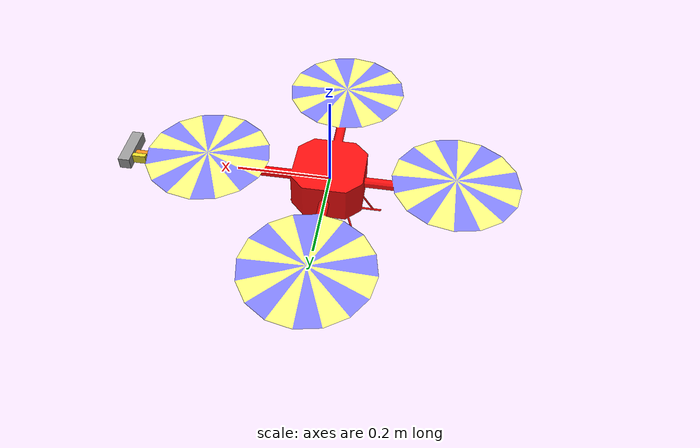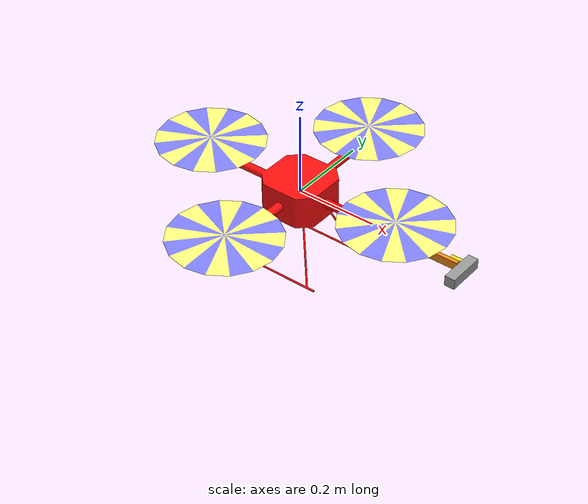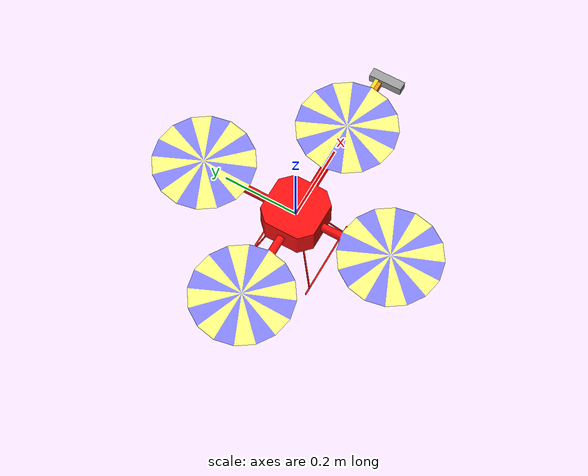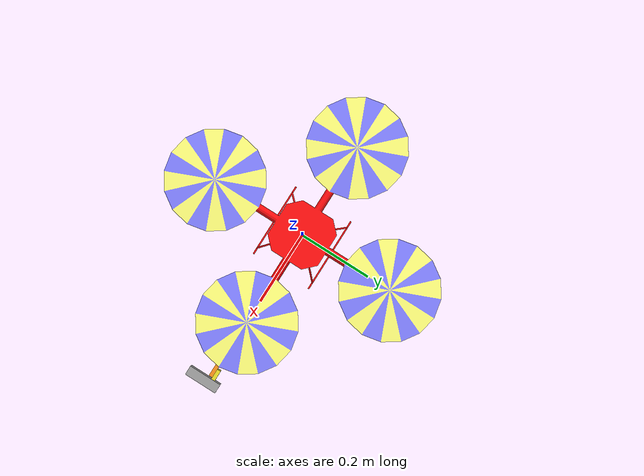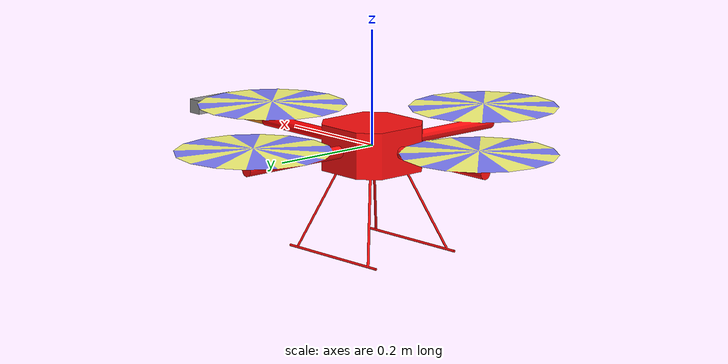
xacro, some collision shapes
<?xml version="1.0"?>

<robot name="quadrotor" xmlns:xacro="http://www.ros.org/wiki/xacro">
    <!--quadrotor_base-->
    <xacro:include filename="$(find hector_quadrotor_description)/urdf/quadrotor_base.urdf.xacro" />
    <xacro:quadrotor_base_macro />

    <!--link to camera-->
    <joint name="base_fixed_joint" type="fixed">
      <origin xyz="0.28 0 0" rpy="0 0 0"/>
      <parent link="base_link"/>
      <child link="base_fixed_link"/>
    </joint>
    <link name="base_fixed_link">
      <inertial>
        <mass value="0.001" />
        <origin xyz="0 0 0" rpy="0 0 0" />
        <inertia ixx="1.0e-6" ixy="0.0" ixz="0.0" iyy="1.0e-6" iyz="0.0" izz="1.0e-6" />
      </inertial>
      <visual>
        <origin xyz="0.075 -0.005 0" rpy="0 0 0" />
        <geometry>
          <box size="0.15 0.01 0.02" />
        </geometry>
      </visual>
      <collision>
        <origin xyz="0.075 -0.005 0" rpy="0 0 0" />
        <geometry>
          <box size="0.15 0.01 0.02" />
        </geometry>
      </collision>
    </link>
    <joint name="camera_joint" type="revolute">
      <origin xyz="0.14 0 0" rpy="0 0 0"/>
      <limit upper="1.5708" lower="-1.5708" velocity="10.0" effort="0.001"/>
      <axis xyz="0 1 0" />
      <parent link="base_fixed_link"/>
      <child link="camera_link"/>
    </joint>
    <link name="camera_link">
      <inertial>
        <mass value="0.001" />
        <origin xyz="0 0 0" rpy="0 0 0" />
        <inertia ixx="1.0e-6" ixy="0.0" ixz="0.0" iyy="1.0e-6" iyz="0.0" izz="1.0e-6" />
      </inertial>
      <visual>
        <origin xyz="0 0.005 0" rpy="0 0 0" />
        <geometry>
          <box size="0.03 0.01 0.02" />
        </geometry>
      </visual>
      <collision>
        <origin xyz="0 0.005 0" rpy="0 0 0" />
        <geometry>
          <box size="0.03 0.01 0.02" />
        </geometry>
      </collision>
    </link>

    <!-- add two links and joints for controlling the depth camera rs435 -->
    <xacro:include filename="$(find aircraft_scanning_description)/urdf/rgbd_camera.urdf.xacro"/>
    <xacro:camera_macro parent="camera_link">
      <origin xyz="0.035 0 0" rpy="0 0 0"/>
    </xacro:camera_macro>

    <gazebo reference="base_fixed_link">
      <material>Gazebo/Orange</material>
    </gazebo>
    <gazebo reference="camera_link">
      <material>Gazebo/Yellow</material>
    </gazebo>
    <!--transmission for joint-->
    <transmission name="camera_tran">
      <type>transmission_interface/SimpleTransmission</type>
      <joint name="camera_joint">
        <hardwareInterface>EffortJointInterface</hardwareInterface>
      </joint>
      <actuator name="camera_motor">
        <hardwareInterface>EffortJointInterface</hardwareInterface>
        <mechanicalReduction>1</mechanicalReduction>
      </actuator>
    </transmission>
    <gazebo>
      <plugin name="gazebo_ros_control" filename="libgazebo_ros_control.so">
        <robotNamespace>/uav_scanning</robotNamespace>
        <robotSimType>gazebo_ros_control/DefaultRobotHWSim</robotSimType>
        <legacyModeNS>true</legacyModeNS>
      </plugin>
    </gazebo>

    <xacro:include filename="$(find hector_quadrotor_gazebo)/urdf/quadrotor_plugins.gazebo.xacro" />

</robot>

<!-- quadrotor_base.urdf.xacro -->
<robot xmlns:xacro="http://www.ros.org/wiki/xacro">

  <xacro:property name="pi" value="3.1415926535897931" />

  <!-- Main quadrotor link -->
  <xacro:macro name="quadrotor_base_macro">
    <link name="base_link">
      <inertial>
        <mass value="1.477" />
        <origin xyz="0 0 0" />
        <inertia ixx="0.01152" ixy="0.0" ixz="0.0" iyy="0.01152" iyz="0.0" izz="0.0218" />
      </inertial>

      <visual>
        <origin xyz="0 0 0" rpy="0 0 0" />
        <geometry>
          <mesh filename="package://hector_quadrotor_description/meshes/quadrotor/quadrotor_base.dae"/>
        </geometry>
      </visual>

      <collision>
        <origin xyz="0 0 0" rpy="0 0 0" />
        <geometry>
          <mesh filename="package://hector_quadrotor_description/meshes/quadrotor/quadrotor_base.stl"/>
        </geometry>
      </collision>
    </link>

    <!-- Sonar height sensor -->

  </xacro:macro>
</robot>

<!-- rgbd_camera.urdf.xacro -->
<robot xmlns:xacro="http://www.ros.org/wiki/xacro">
  <xacro:property name="M_PI" value="3.1415926535897931" />
  <!-- Intel_RealSense_D400 info-->
  <xacro:property name="realsense_d435_width" value="0.09"/>
  <xacro:property name="realsense_d435_height" value="0.025"/>
  <xacro:property name="realsense_d435_depth" value="0.025"/>
  <!-- Intel_RealSense_D400_Family_Datasheet_Jan2019.pdf, page 64 -->
  <xacro:property name="realsense_d435_front_to_depth" value="0.0042" />
   <!-- Measured from CAD file -->
  <xacro:property name="realsense_d435_mount_hole_to_front" value="0.0149" />
  <xacro:property name="realsense_d435_case_offset_x" value="${realsense_d435_front_to_depth - realsense_d435_depth/2.0}"/>
  <!-- mounting hole to depth frame, Intel_RealSense_D400_Family_Datasheet_Jan2019.pdf, page 66 -->
  <xacro:property name="realsense_d435_case_offset_y" value="-0.0175"/>
  <xacro:property name="realsense_d435_case_offset_z" value="0.0"/>
  <xacro:property name="rpy" value="0 0 0"/>

  <xacro:macro name="camera_macro" params="parent *origin">
    <joint name="rs435_joint" type="fixed">
      <xacro:insert_block name="origin"/>
      <parent link="${parent}"/>
      <child link="rs435_link"/>
    </joint>
    <link name="rs435_link">
      <inertial>
        <mass value="0.001" />
        <origin xyz="0 0 0" rpy="0 0 0" />
        <inertia ixx="1.0e-6" ixy="0" ixz="0" iyy="1.0e-6" iyz="0" izz="1.0e-6" />
      </inertial>
	    <visual>
        <origin xyz="${realsense_d435_front_to_depth} ${realsense_d435_case_offset_y} 0.0" rpy="${M_PI/2} 0 ${M_PI/2}" />
          <geometry>
            <mesh filename="package://hector_sensors_description/meshes/intel_realsense_d435/D435.dae" scale="0.001 0.001 0.001" />
          </geometry>
      </visual>
      <collision>
        <origin xyz="${realsense_d435_case_offset_x} ${realsense_d435_case_offset_y} ${realsense_d435_case_offset_z}" rpy="0 0 0" />
          <geometry>
            <box size="${realsense_d435_depth} ${realsense_d435_width} ${realsense_d435_height}" />
          </geometry>
      </collision>
    </link>

    <gazebo reference="rs435_link">
      <material>Gazebo/Grey</material>
      <sensor type="depth" name="rs435">
        <update_rate>30</update_rate>
        <camera>
          <horizontal_fov>${69.4*M_PI/180.0}</horizontal_fov>
          <vertical_fov>${42.5*M_PI/180.0}</vertical_fov>
          <diagonal_fov>${77.0*M_PI/180.0}</diagonal_fov>
          <image>
            <format>B8G8R8</format>
            <width>640</width>
            <height>480</height>
          </image>
          <clip>
            <near>0.15</near>
            <far>9.0</far>
          </clip>
        </camera>
        <plugin name="rs435_camera_controller" filename="libgazebo_ros_openni_kinect.so">
          <cameraName>rs435</cameraName>
          <imageTopicName>color/image_raw</imageTopicName>
          <cameraInfoTopicName>color/camera_info</cameraInfoTopicName>
          <depthImageTopicName>depth/image_raw</depthImageTopicName>
          <depthImageCameraInfoTopicName>depth/camera_info</depthImageCameraInfoTopicName>
          <pointCloudTopicName>depth/points</pointCloudTopicName>
          <frameName>rs435_color_optical_frame</frameName>
        </plugin>
      </sensor>
    </gazebo>
  </xacro:macro>
</robot>
